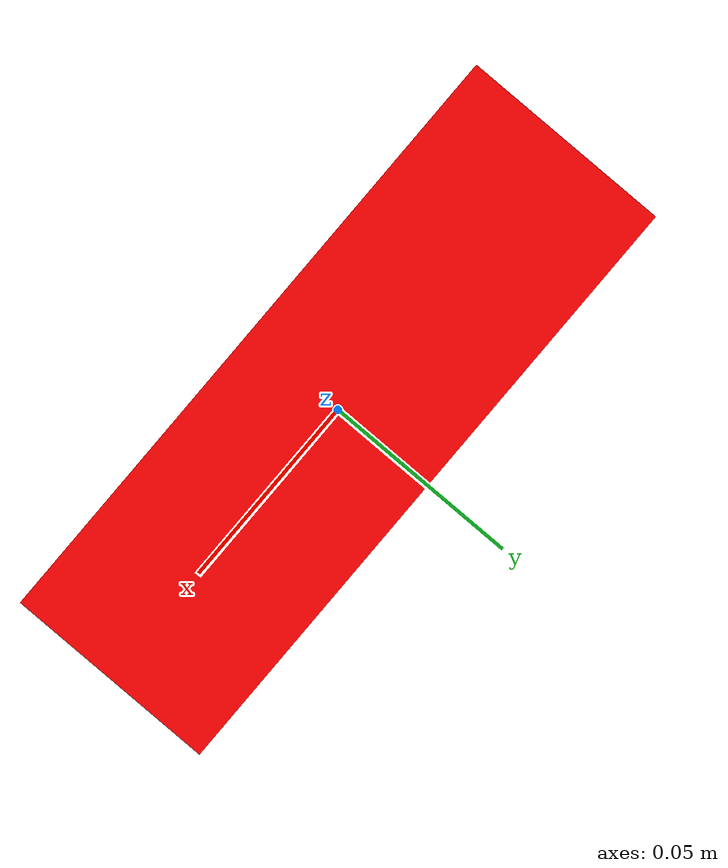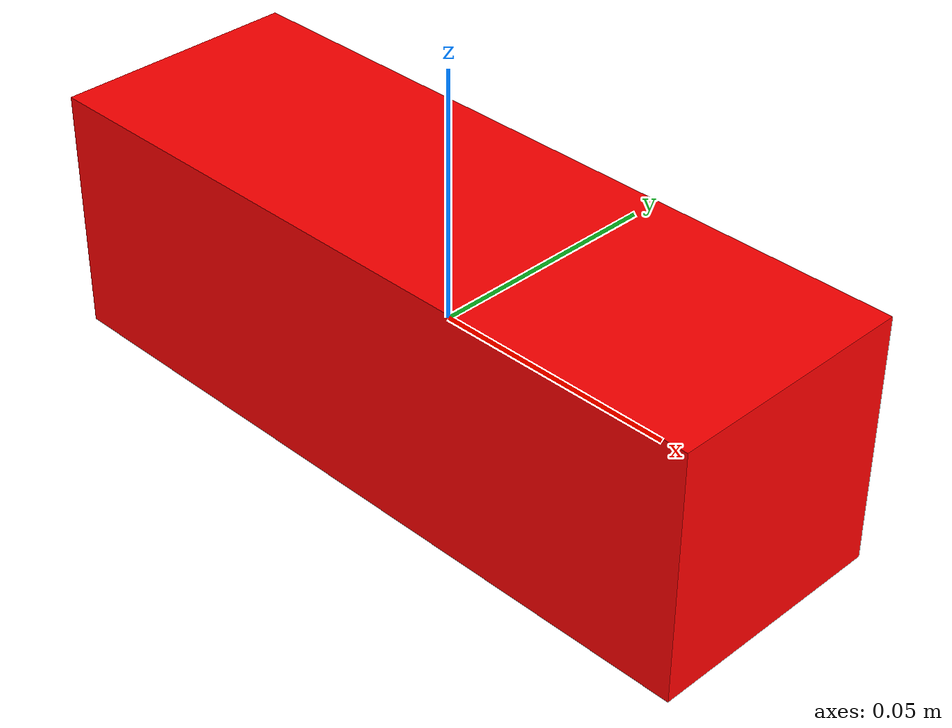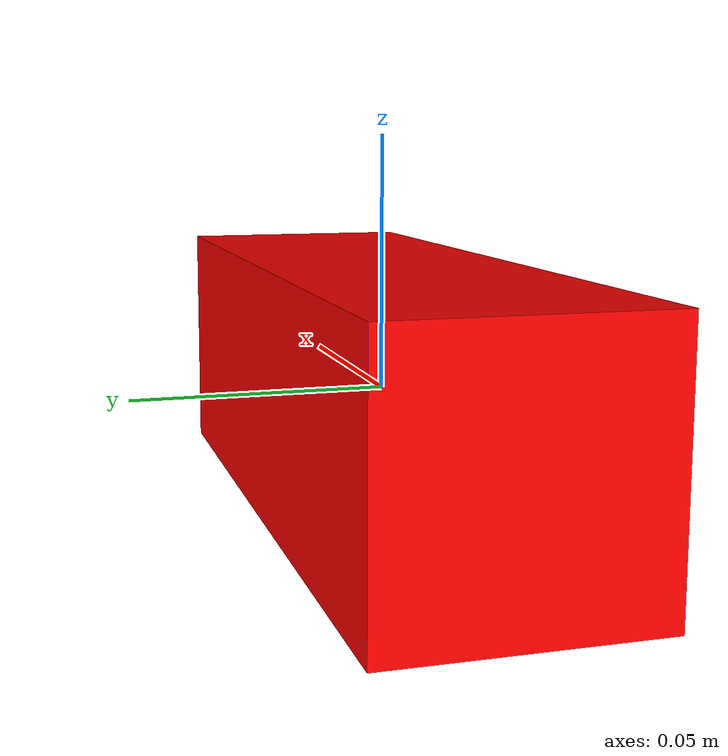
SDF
<?xml version='1.0'?>
<sdf version="1.4">
  <model name="box2">
    <pose>0 0 0 0 0 0</pose>
    <link name="link">
      <inertial>
        <mass>0.5</mass>
        <inertia>
          <ixx>0.083</ixx>
          <ixy>0.0</ixy>
          <ixz>0.0</ixz>
          <iyy>0.083</iyy>
          <iyz>0.0</iyz>
          <izz>0.083</izz>
        </inertia>
      </inertial>

      <visual name="visual">
        <geometry>
          <box>
            <size>0.15 0.05 0.05</size>
          </box>
        </geometry>
        <material>
          <ambient>1 0 0 1</ambient>
          <diffuse>1 0 0 1</diffuse>
          <specular>0 0 0 0</specular>
          <emissive>1 0 0 1</emissive>
        </material>
      </visual>
      <gravity>0</gravity>
    </link>
  </model>
</sdf>
